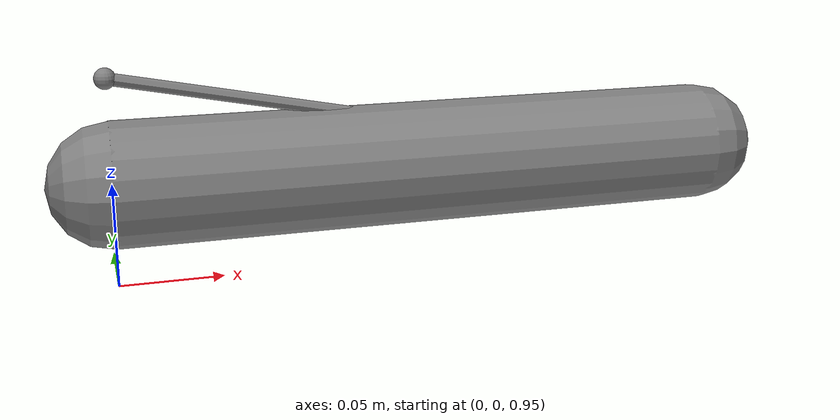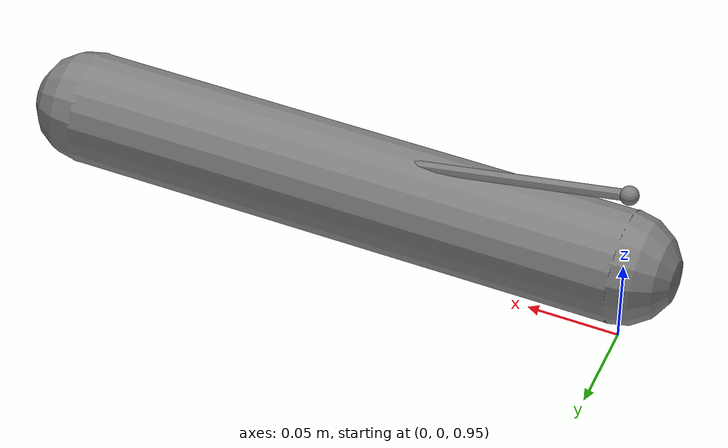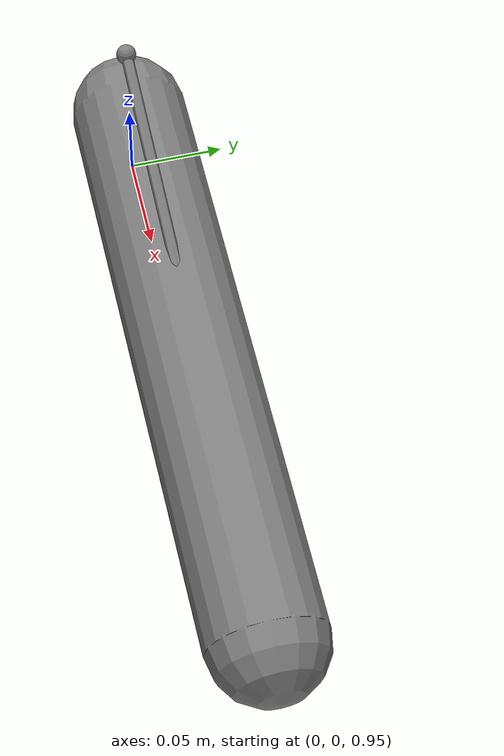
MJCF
<mujoco model="moment-arm">
  <option gravity="0 0 0" timestep="0.002"/>
  <compiler angle="radian"/>
  <worldbody>
    <site name="s_world" pos="0 0 1.05"/>
    <body name="arm" pos="0 0 1">
      <joint name="j" type="hinge" axis="0 1 0"/>
      <geom type="capsule" size="0.03" fromto="0 0 0 0.3 0 0" mass="0.5"/>
      <site name="s_arm" pos="0.25 0 0"/>
    </body>
  </worldbody>
  <tendon>
    <spatial name="t1">
      <site site="s_world"/>
      <site site="s_arm"/>
    </spatial>
  </tendon>
</mujoco>
